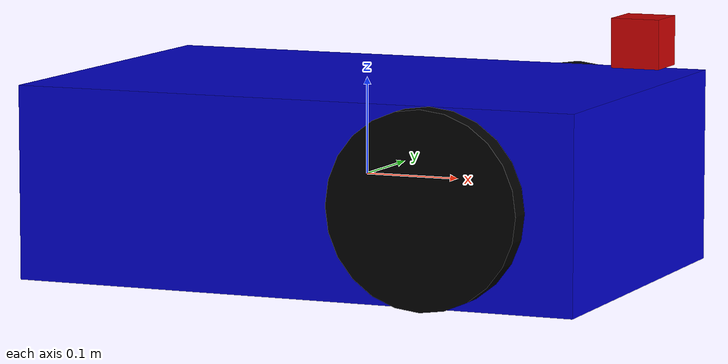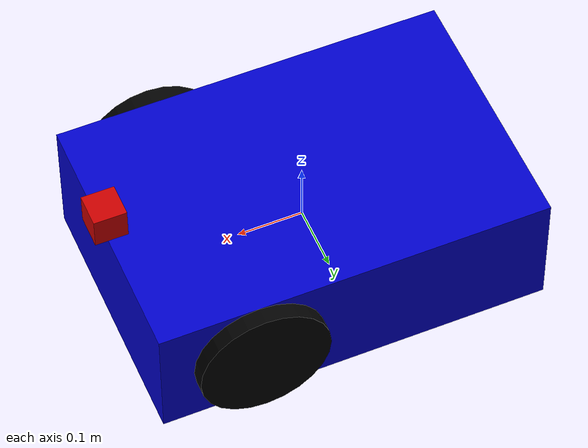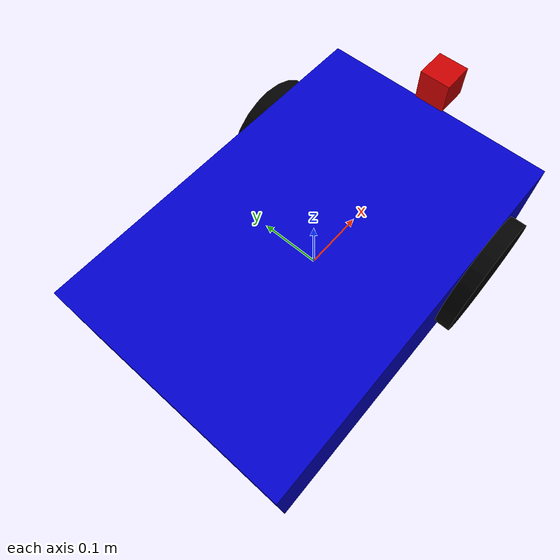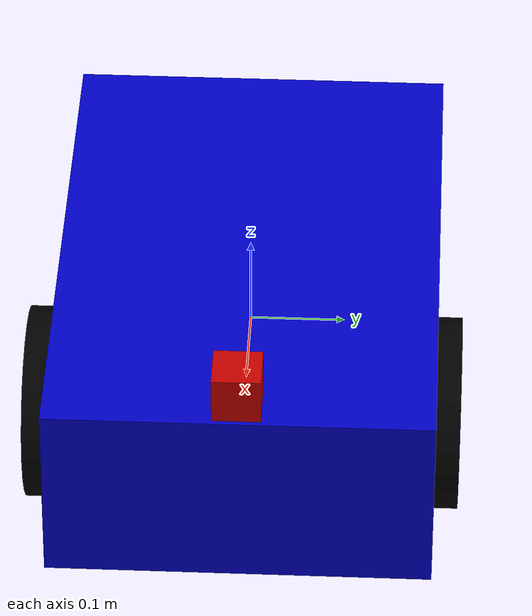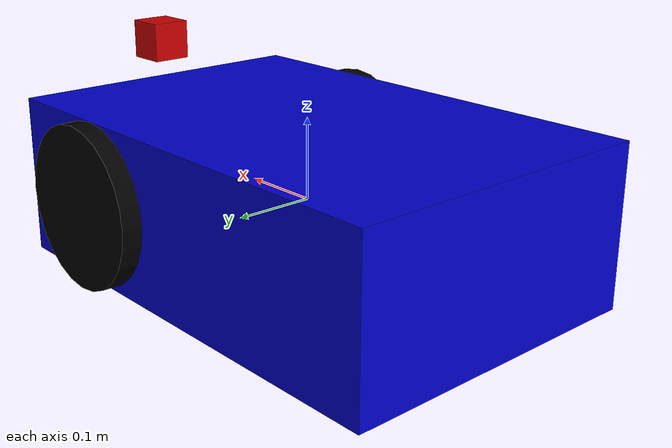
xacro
<?xml version="1.0"?>
<robot xmlns:xacro="http://www.ros.org/wiki/xacro" name="simple_robot">

  <!-- Parameters -->
  <xacro:property name="base_width" value="0.4"/>
  <xacro:property name="base_length" value="0.6"/>
  <xacro:property name="base_height" value="0.2"/>
  <xacro:property name="wheel_radius" value="0.1"/>
  <xacro:property name="wheel_width" value="0.05"/>

  <!-- Base Link -->
  <link name="base_link">
    <inertial>
      <mass value="10.0"/>
      <origin xyz="0 0 0"/>
      <inertia ixx="0.1" ixy="0.0" ixz="0.0"
               iyy="0.1" iyz="0.0" izz="0.1"/>
    </inertial>
    <collision>
      <geometry>
        <box size="${base_length} ${base_width} ${base_height}"/>
      </geometry>
    </collision>
    <visual>
      <geometry>
        <box size="${base_length} ${base_width} ${base_height}"/>
      </geometry>
      <material name="blue">
        <color rgba="0 0 0.8 1"/>
      </material>
    </visual>
  </link>

  <!-- Wheel Macro -->
  <xacro:macro name="wheel" params="prefix reflect">
    <link name="${prefix}_wheel">
      <inertial>
        <mass value="1.0"/>
        <inertia ixx="0.01" ixy="0" ixz="0" iyy="0.01" iyz="0" izz="0.01"/>
      </inertial>
      <collision>
        <geometry>
          <cylinder radius="${wheel_radius}" length="${wheel_width}"/>
        </geometry>
        <origin rpy="${pi/2} 0 0"/>
      </collision>
      <visual>
        <geometry>
          <cylinder radius="${wheel_radius}" length="${wheel_width}"/>
        </geometry>
        <origin rpy="${pi/2} 0 0"/>
        <material name="black">
          <color rgba="0 0 0 1"/>
        </material>
      </visual>
    </link>

    <joint name="${prefix}_wheel_joint" type="continuous">
      <parent link="base_link"/>
      <child link="${prefix}_wheel"/>
      <origin xyz="${base_length/4} ${reflect*base_width/2} 0" rpy="0 0 0"/>
      <axis xyz="0 1 0"/>
    </joint>
  </xacro:macro>

  <!-- Instantiate Wheels -->
  <xacro:wheel prefix="left_front" reflect="1"/>
  <xacro:wheel prefix="right_front" reflect="-1"/>
  <xacro:wheel prefix="left_rear" reflect="1"/>
  <xacro:wheel prefix="right_rear" reflect="-1"/>

  <!-- Camera Link -->
  <link name="camera_link">
    <inertial>
      <mass value="0.1"/>
      <inertia ixx="0.001" ixy="0" ixz="0" iyy="0.001" iyz="0" izz="0.001"/>
    </inertial>
    <collision>
      <geometry>
        <box size="0.05 0.05 0.05"/>
      </geometry>
    </collision>
    <visual>
      <geometry>
        <box size="0.05 0.05 0.05"/>
      </geometry>
      <material name="red">
        <color rgba="0.8 0 0 1"/>
      </material>
    </visual>
  </link>

  <joint name="camera_joint" type="fixed">
    <parent link="base_link"/>
    <child link="camera_link"/>
    <origin xyz="${base_length/2} 0 ${base_height/2 + 0.05}" rpy="0 0 0"/>
  </joint>

  <!-- Gazebo-specific properties and plugins -->
  <gazebo reference="base_link">
    <material>Gazebo/Blue</material>
  </gazebo>

  <!-- Camera Plugin -->
  <gazebo reference="camera_link">
    <sensor name="camera" type="camera">
      <camera>
        <horizontal_fov>1.047</horizontal_fov>
        <image>
          <width>640</width>
          <height>480</height>
        </image>
        <clip>
          <near>0.1</near>
          <far>100</far>
        </clip>
      </camera>
      <always_on>1</always_on>
      <update_rate>30</update_rate>
      <visualize>true</visualize>
      <plugin name="camera_controller" filename="libgazebo_ros_camera.so">
        <ros>
          <namespace>/simple_robot</namespace>
          <remapping>image_raw:=camera/image_raw</remapping>
          <remapping>camera_info:=camera/camera_info</remapping>
        </ros>
        <camera_name>camera</camera_name>
        <frame_name>camera_link</frame_name>
      </plugin>
    </sensor>
  </gazebo>

  <!-- Differential Drive Plugin -->
  <gazebo>
    <plugin name="diff_drive" filename="libgazebo_ros_diff_drive.so">
      <ros>
        <namespace>/simple_robot</namespace>
      </ros>
      <left_joint>left_front_wheel_joint</left_joint>
      <right_joint>right_front_wheel_joint</right_joint>
      <wheel_separation>${base_width}</wheel_separation>
      <wheel_diameter>${2*wheel_radius}</wheel_diameter>
      <max_wheel_torque>20</max_wheel_torque>
      <max_wheel_acceleration>1.0</max_wheel_acceleration>
      <publish_odom>true</publish_odom>
      <publish_odom_tf>true</publish_odom_tf>
      <odometry_frame>odom</odometry_frame>
      <robot_base_frame>base_link</robot_base_frame>
    </plugin>
  </gazebo>

</robot>
